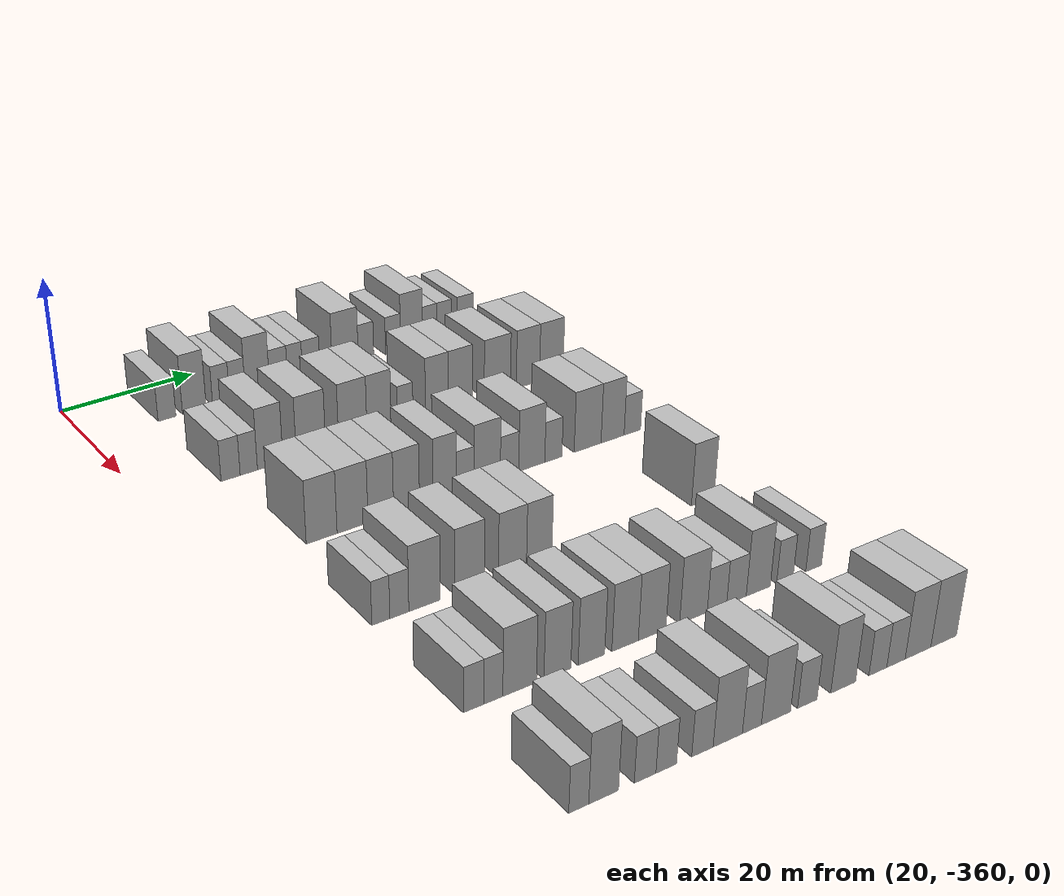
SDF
<sdf version="1.6">
 <world name="default">
  <model name="building_1">
   <static>1</static>
   <pose>25.0000 -348.6627 0 0.000000 0.000000 0.000000</pose>
   <link name="link">
    <pose>0 0 3.00 0 0 0</pose>
    <collision name="collision"><geometry><box><size>10.0000 2.6746 6.0000</size></box></geometry></collision>
    <visual name="visual">
     <cast_shadows>0</cast_shadows>
     <geometry><box><size>10.0000 2.6746 6.0000</size></box></geometry>
     <material>
      <script>
       <uri>model://HANNAS_wall/materials/scripts</uri>
       <uri>model://HANNAS_wall/materials/textures</uri>
       <name>vrc/HANNAS_wall</name>
      </script>
     </material>
    </visual>
   </link>
  </model>
  <model name="building_2">
   <static>1</static>
   <pose>25.0000 -344.5249 0 0.000000 0.000000 0.000000</pose>
   <link name="link">
    <pose>0 0 4.50 0 0 0</pose>
    <collision name="collision"><geometry><box><size>10.0000 3.6009 9.0000</size></box></geometry></collision>
    <visual name="visual">
     <cast_shadows>0</cast_shadows>
     <geometry><box><size>10.0000 3.6009 9.0000</size></box></geometry>
     <material>
      <script>
       <uri>model://HANNAS_wall/materials/scripts</uri>
       <uri>model://HANNAS_wall/materials/textures</uri>
       <name>vrc/HANNAS_wall</name>
      </script>
     </material>
    </visual>
   </link>
  </model>
  <model name="building_3">
   <static>1</static>
   <pose>25.0000 -340.4151 0 0.000000 0.000000 0.000000</pose>
   <link name="link">
    <pose>0 0 3.00 0 0 0</pose>
    <collision name="collision"><geometry><box><size>10.0000 2.6188 6.0000</size></box></geometry></collision>
    <visual name="visual">
     <cast_shadows>0</cast_shadows>
     <geometry><box><size>10.0000 2.6188 6.0000</size></box></geometry>
     <material>
      <script>
       <uri>model://HANNAS_wall/materials/scripts</uri>
       <uri>model://HANNAS_wall/materials/textures</uri>
       <name>vrc/HANNAS_wall</name>
      </script>
     </material>
    </visual>
   </link>
  </model>
  <model name="building_4">
   <static>1</static>
   <pose>25.0000 -337.8743 0 0.000000 0.000000 0.000000</pose>
   <link name="link">
    <pose>0 0 3.00 0 0 0</pose>
    <collision name="collision"><geometry><box><size>10.0000 2.4629 6.0000</size></box></geometry></collision>
    <visual name="visual">
     <cast_shadows>0</cast_shadows>
     <geometry><box><size>10.0000 2.4629 6.0000</size></box></geometry>
     <material>
      <script>
       <uri>model://HANNAS_wall/materials/scripts</uri>
       <uri>model://HANNAS_wall/materials/textures</uri>
       <name>vrc/HANNAS_wall</name>
      </script>
     </material>
    </visual>
   </link>
  </model>
  <model name="building_5">
   <static>1</static>
   <pose>25.0000 -334.7237 0 0.000000 0.000000 0.000000</pose>
   <link name="link">
    <pose>0 0 4.50 0 0 0</pose>
    <collision name="collision"><geometry><box><size>10.0000 3.8383 9.0000</size></box></geometry></collision>
    <visual name="visual">
     <cast_shadows>0</cast_shadows>
     <geometry><box><size>10.0000 3.8383 9.0000</size></box></geometry>
     <material>
      <script>
       <uri>model://HANNAS_wall/materials/scripts</uri>
       <uri>model://HANNAS_wall/materials/textures</uri>
       <name>vrc/HANNAS_wall</name>
      </script>
     </material>
    </visual>
   </link>
  </model>
  <model name="building_6">
   <static>1</static>
   <pose>25.0000 -331.3662 0 0.000000 0.000000 0.000000</pose>
   <link name="link">
    <pose>0 0 3.00 0 0 0</pose>
    <collision name="collision"><geometry><box><size>10.0000 2.8765 6.0000</size></box></geometry></collision>
    <visual name="visual">
     <cast_shadows>0</cast_shadows>
     <geometry><box><size>10.0000 2.8765 6.0000</size></box></geometry>
     <material>
      <script>
       <uri>model://HANNAS_wall/materials/scripts</uri>
       <uri>model://HANNAS_wall/materials/textures</uri>
       <name>vrc/HANNAS_wall</name>
      </script>
     </material>
    </visual>
   </link>
  </model>
  <model name="building_7">
   <static>1</static>
   <pose>25.0000 -328.7133 0 0.000000 0.000000 0.000000</pose>
   <link name="link">
    <pose>0 0 3.00 0 0 0</pose>
    <collision name="collision"><geometry><box><size>10.0000 2.4293 6.0000</size></box></geometry></collision>
    <visual name="visual">
     <cast_shadows>0</cast_shadows>
     <geometry><box><size>10.0000 2.4293 6.0000</size></box></geometry>
     <material>
      <script>
       <uri>model://HANNAS_wall/materials/scripts</uri>
       <uri>model://HANNAS_wall/materials/textures</uri>
       <name>vrc/HANNAS_wall</name>
      </script>
     </material>
    </visual>
   </link>
  </model>
  <model name="building_8">
   <static>1</static>
   <pose>25.0000 -326.0692 0 0.000000 0.000000 0.000000</pose>
   <link name="link">
    <pose>0 0 3.00 0 0 0</pose>
    <collision name="collision"><geometry><box><size>10.0000 2.8588 6.0000</size></box></geometry></collision>
    <visual name="visual">
     <cast_shadows>0</cast_shadows>
     <geometry><box><size>10.0000 2.8588 6.0000</size></box></geometry>
     <material>
      <script>
       <uri>model://HANNAS_wall/materials/scripts</uri>
       <uri>model://HANNAS_wall/materials/textures</uri>
       <name>vrc/HANNAS_wall</name>
      </script>
     </material>
    </visual>
   </link>
  </model>
  <model name="building_9">
   <static>1</static>
   <pose>25.0000 -320.4732 0 0.000000 0.000000 0.000000</pose>
   <link name="link">
    <pose>0 0 4.50 0 0 0</pose>
    <collision name="collision"><geometry><box><size>10.0000 4.3331 9.0000</size></box></geometry></collision>
    <visual name="visual">
     <cast_shadows>0</cast_shadows>
     <geometry><box><size>10.0000 4.3331 9.0000</size></box></geometry>
     <material>
      <script>
       <uri>model://HANNAS_wall/materials/scripts</uri>
       <uri>model://HANNAS_wall/materials/textures</uri>
       <name>vrc/HANNAS_wall</name>
      </script>
     </material>
    </visual>
   </link>
  </model>
  <model name="building_10">
   <static>1</static>
   <pose>25.0000 -317.0004 0 0.000000 0.000000 0.000000</pose>
   <link name="link">
    <pose>0 0 3.00 0 0 0</pose>
    <collision name="collision"><geometry><box><size>10.0000 2.6125 6.0000</size></box></geometry></collision>
    <visual name="visual">
     <cast_shadows>0</cast_shadows>
     <geometry><box><size>10.0000 2.6125 6.0000</size></box></geometry>
     <material>
      <script>
       <uri>model://HANNAS_wall/materials/scripts</uri>
       <uri>model://HANNAS_wall/materials/textures</uri>
       <name>vrc/HANNAS_wall</name>
      </script>
     </material>
    </visual>
   </link>
  </model>
  <model name="building_11">
   <static>1</static>
   <pose>25.0000 -312.4064 0 0.000000 0.000000 0.000000</pose>
   <link name="link">
    <pose>0 0 3.00 0 0 0</pose>
    <collision name="collision"><geometry><box><size>10.0000 2.5755 6.0000</size></box></geometry></collision>
    <visual name="visual">
     <cast_shadows>0</cast_shadows>
     <geometry><box><size>10.0000 2.5755 6.0000</size></box></geometry>
     <material>
      <script>
       <uri>model://HANNAS_wall/materials/scripts</uri>
       <uri>model://HANNAS_wall/materials/textures</uri>
       <name>vrc/HANNAS_wall</name>
      </script>
     </material>
    </visual>
   </link>
  </model>
  <model name="building_12">
   <static>1</static>
   <pose>25.0000 -309.1953 0 0.000000 0.000000 0.000000</pose>
   <link name="link">
    <pose>0 0 4.50 0 0 0</pose>
    <collision name="collision"><geometry><box><size>10.0000 3.8468 9.0000</size></box></geometry></collision>
    <visual name="visual">
     <cast_shadows>0</cast_shadows>
     <geometry><box><size>10.0000 3.8468 9.0000</size></box></geometry>
     <material>
      <script>
       <uri>model://HANNAS_wall/materials/scripts</uri>
       <uri>model://HANNAS_wall/materials/textures</uri>
       <name>vrc/HANNAS_wall</name>
      </script>
     </material>
    </visual>
   </link>
  </model>
  <model name="building_13">
   <static>1</static>
   <pose>25.0000 -306.0507 0 0.000000 0.000000 0.000000</pose>
   <link name="link">
    <pose>0 0 3.00 0 0 0</pose>
    <collision name="collision"><geometry><box><size>10.0000 2.4424 6.0000</size></box></geometry></collision>
    <visual name="visual">
     <cast_shadows>0</cast_shadows>
     <geometry><box><size>10.0000 2.4424 6.0000</size></box></geometry>
     <material>
      <script>
       <uri>model://HANNAS_wall/materials/scripts</uri>
       <uri>model://HANNAS_wall/materials/textures</uri>
       <name>vrc/HANNAS_wall</name>
      </script>
     </material>
    </visual>
   </link>
  </model>
  <model name="building_14">
   <static>1</static>
   <pose>25.0000 -303.5327 0 0.000000 0.000000 0.000000</pose>
   <link name="link">
    <pose>0 0 3.00 0 0 0</pose>
    <collision name="collision"><geometry><box><size>10.0000 2.5937 6.0000</size></box></geometry></collision>
    <visual name="visual">
     <cast_shadows>0</cast_shadows>
     <geometry><box><size>10.0000 2.5937 6.0000</size></box></geometry>
     <material>
      <script>
       <uri>model://HANNAS_wall/materials/scripts</uri>
       <uri>model://HANNAS_wall/materials/textures</uri>
       <name>vrc/HANNAS_wall</name>
      </script>
     </material>
    </visual>
   </link>
  </model>
  <model name="building_15">
   <static>1</static>
   <pose>25.0000 -299.7746 0 0.000000 0.000000 0.000000</pose>
   <link name="link">
    <pose>0 0 3.00 0 0 0</pose>
    <collision name="collision"><geometry><box><size>10.0000 2.9224 6.0000</size></box></geometry></collision>
    <visual name="visual">
     <cast_shadows>0</cast_shadows>
     <geometry><box><size>10.0000 2.9224 6.0000</size></box></geometry>
     <material>
      <script>
       <uri>model://HANNAS_wall/materials/scripts</uri>
       <uri>model://HANNAS_wall/materials/textures</uri>
       <name>vrc/HANNAS_wall</name>
      </script>
     </material>
    </visual>
   </link>
  </model>
  <model name="building_182">
   <static>1</static>
   <pose>44.0000 -348.6168 0 0.000000 0.000000 0.000000</pose>
   <link name="link">
    <pose>0 0 3.00 0 0 0</pose>
    <collision name="collision"><geometry><box><size>10.0000 2.7663 6.0000</size></box></geometry></collision>
    <visual name="visual">
     <cast_shadows>0</cast_shadows>
     <geometry><box><size>10.0000 2.7663 6.0000</size></box></geometry>
     <material>
      <script>
       <uri>model://HANNAS_wall/materials/scripts</uri>
       <uri>model://HANNAS_wall/materials/textures</uri>
       <name>vrc/HANNAS_wall</name>
      </script>
     </material>
    </visual>
   </link>
  </model>
  <model name="building_183">
   <static>1</static>
   <pose>44.0000 -345.9728 0 0.000000 0.000000 0.000000</pose>
   <link name="link">
    <pose>0 0 3.00 0 0 0</pose>
    <collision name="collision"><geometry><box><size>10.0000 2.5217 6.0000</size></box></geometry></collision>
    <visual name="visual">
     <cast_shadows>0</cast_shadows>
     <geometry><box><size>10.0000 2.5217 6.0000</size></box></geometry>
     <material>
      <script>
       <uri>model://HANNAS_wall/materials/scripts</uri>
       <uri>model://HANNAS_wall/materials/textures</uri>
       <name>vrc/HANNAS_wall</name>
      </script>
     </material>
    </visual>
   </link>
  </model>
  <model name="building_184">
   <static>1</static>
   <pose>44.0000 -342.8248 0 0.000000 0.000000 0.000000</pose>
   <link name="link">
    <pose>0 0 4.50 0 0 0</pose>
    <collision name="collision"><geometry><box><size>10.0000 3.7743 9.0000</size></box></geometry></collision>
    <visual name="visual">
     <cast_shadows>0</cast_shadows>
     <geometry><box><size>10.0000 3.7743 9.0000</size></box></geometry>
     <material>
      <script>
       <uri>model://HANNAS_wall/materials/scripts</uri>
       <uri>model://HANNAS_wall/materials/textures</uri>
       <name>vrc/HANNAS_wall</name>
      </script>
     </material>
    </visual>
   </link>
  </model>
  <model name="building_185">
   <static>1</static>
   <pose>44.0000 -336.7189 0 0.000000 0.000000 0.000000</pose>
   <link name="link">
    <pose>0 0 4.50 0 0 0</pose>
    <collision name="collision"><geometry><box><size>10.0000 4.4376 9.0000</size></box></geometry></collision>
    <visual name="visual">
     <cast_shadows>0</cast_shadows>
     <geometry><box><size>10.0000 4.4376 9.0000</size></box></geometry>
     <material>
      <script>
       <uri>model://HANNAS_wall/materials/scripts</uri>
       <uri>model://HANNAS_wall/materials/textures</uri>
       <name>vrc/HANNAS_wall</name>
      </script>
     </material>
    </visual>
   </link>
  </model>
  <model name="building_186">
   <static>1</static>
   <pose>44.0000 -330.3016 0 0.000000 0.000000 0.000000</pose>
   <link name="link">
    <pose>0 0 4.50 0 0 0</pose>
    <collision name="collision"><geometry><box><size>10.0000 4.3970 9.0000</size></box></geometry></collision>
    <visual name="visual">
     <cast_shadows>0</cast_shadows>
     <geometry><box><size>10.0000 4.3970 9.0000</size></box></geometry>
     <material>
      <script>
       <uri>model://HANNAS_wall/materials/scripts</uri>
       <uri>model://HANNAS_wall/materials/textures</uri>
       <name>vrc/HANNAS_wall</name>
      </script>
     </material>
    </visual>
   </link>
  </model>
  <model name="building_187">
   <static>1</static>
   <pose>44.0000 -326.1953 0 0.000000 0.000000 0.000000</pose>
   <link name="link">
    <pose>0 0 4.50 0 0 0</pose>
    <collision name="collision"><geometry><box><size>10.0000 3.8155 9.0000</size></box></geometry></collision>
    <visual name="visual">
     <cast_shadows>0</cast_shadows>
     <geometry><box><size>10.0000 3.8155 9.0000</size></box></geometry>
     <material>
      <script>
       <uri>model://HANNAS_wall/materials/scripts</uri>
       <uri>model://HANNAS_wall/materials/textures</uri>
       <name>vrc/HANNAS_wall</name>
      </script>
     </material>
    </visual>
   </link>
  </model>
  <model name="building_188">
   <static>1</static>
   <pose>44.0000 -322.0393 0 0.000000 0.000000 0.000000</pose>
   <link name="link">
    <pose>0 0 3.00 0 0 0</pose>
    <collision name="collision"><geometry><box><size>10.0000 2.4966 6.0000</size></box></geometry></collision>
    <visual name="visual">
     <cast_shadows>0</cast_shadows>
     <geometry><box><size>10.0000 2.4966 6.0000</size></box></geometry>
     <material>
      <script>
       <uri>model://HANNAS_wall/materials/scripts</uri>
       <uri>model://HANNAS_wall/materials/textures</uri>
       <name>vrc/HANNAS_wall</name>
      </script>
     </material>
    </visual>
   </link>
  </model>
  <model name="building_189">
   <static>1</static>
   <pose>44.0000 -316.9140 0 0.000000 0.000000 0.000000</pose>
   <link name="link">
    <pose>0 0 4.50 0 0 0</pose>
    <collision name="collision"><geometry><box><size>10.0000 3.7540 9.0000</size></box></geometry></collision>
    <visual name="visual">
     <cast_shadows>0</cast_shadows>
     <geometry><box><size>10.0000 3.7540 9.0000</size></box></geometry>
     <material>
      <script>
       <uri>model://HANNAS_wall/materials/scripts</uri>
       <uri>model://HANNAS_wall/materials/textures</uri>
       <name>vrc/HANNAS_wall</name>
      </script>
     </material>
    </visual>
   </link>
  </model>
  <model name="building_190">
   <static>1</static>
   <pose>44.0000 -313.0675 0 0.000000 0.000000 0.000000</pose>
   <link name="link">
    <pose>0 0 4.50 0 0 0</pose>
    <collision name="collision"><geometry><box><size>10.0000 3.9390 9.0000</size></box></geometry></collision>
    <visual name="visual">
     <cast_shadows>0</cast_shadows>
     <geometry><box><size>10.0000 3.9390 9.0000</size></box></geometry>
     <material>
      <script>
       <uri>model://HANNAS_wall/materials/scripts</uri>
       <uri>model://HANNAS_wall/materials/textures</uri>
       <name>vrc/HANNAS_wall</name>
      </script>
     </material>
    </visual>
   </link>
  </model>
  <model name="building_191">
   <static>1</static>
   <pose>44.0000 -306.8659 0 0.000000 0.000000 0.000000</pose>
   <link name="link">
    <pose>0 0 4.50 0 0 0</pose>
    <collision name="collision"><geometry><box><size>10.0000 4.4641 9.0000</size></box></geometry></collision>
    <visual name="visual">
     <cast_shadows>0</cast_shadows>
     <geometry><box><size>10.0000 4.4641 9.0000</size></box></geometry>
     <material>
      <script>
       <uri>model://HANNAS_wall/materials/scripts</uri>
       <uri>model://HANNAS_wall/materials/textures</uri>
       <name>vrc/HANNAS_wall</name>
      </script>
     </material>
    </visual>
   </link>
  </model>
  <model name="building_192">
   <static>1</static>
   <pose>44.0000 -301.6291 0 0.000000 0.000000 0.000000</pose>
   <link name="link">
    <pose>0 0 4.50 0 0 0</pose>
    <collision name="collision"><geometry><box><size>10.0000 4.0096 9.0000</size></box></geometry></collision>
    <visual name="visual">
     <cast_shadows>0</cast_shadows>
     <geometry><box><size>10.0000 4.0096 9.0000</size></box></geometry>
     <material>
      <script>
       <uri>model://HANNAS_wall/materials/scripts</uri>
       <uri>model://HANNAS_wall/materials/textures</uri>
       <name>vrc/HANNAS_wall</name>
      </script>
     </material>
    </visual>
   </link>
  </model>
  <model name="building_193">
   <static>1</static>
   <pose>44.0000 -297.5588 0 0.000000 0.000000 0.000000</pose>
   <link name="link">
    <pose>0 0 4.50 0 0 0</pose>
    <collision name="collision"><geometry><box><size>10.0000 4.1310 9.0000</size></box></geometry></collision>
    <visual name="visual">
     <cast_shadows>0</cast_shadows>
     <geometry><box><size>10.0000 4.1310 9.0000</size></box></geometry>
     <material>
      <script>
       <uri>model://HANNAS_wall/materials/scripts</uri>
       <uri>model://HANNAS_wall/materials/textures</uri>
       <name>vrc/HANNAS_wall</name>
      </script>
     </material>
    </visual>
   </link>
  </model>
  <model name="building_352">
   <static>1</static>
   <pose>63.0000 -345.8275 0 0.000000 0.000000 0.000000</pose>
   <link name="link">
    <pose>0 0 4.50 0 0 0</pose>
    <collision name="collision"><geometry><box><size>10.0000 4.3451 9.0000</size></box></geometry></collision>
    <visual name="visual">
     <cast_shadows>0</cast_shadows>
     <geometry><box><size>10.0000 4.3451 9.0000</size></box></geometry>
     <material>
      <script>
       <uri>model://HANNAS_wall/materials/scripts</uri>
       <uri>model://HANNAS_wall/materials/textures</uri>
       <name>vrc/HANNAS_wall</name>
      </script>
     </material>
    </visual>
   </link>
  </model>
  <model name="building_353">
   <static>1</static>
   <pose>63.0000 -341.4387 0 0.000000 0.000000 0.000000</pose>
   <link name="link">
    <pose>0 0 4.50 0 0 0</pose>
    <collision name="collision"><geometry><box><size>10.0000 4.4324 9.0000</size></box></geometry></collision>
    <visual name="visual">
     <cast_shadows>0</cast_shadows>
     <geometry><box><size>10.0000 4.4324 9.0000</size></box></geometry>
     <material>
      <script>
       <uri>model://HANNAS_wall/materials/scripts</uri>
       <uri>model://HANNAS_wall/materials/textures</uri>
       <name>vrc/HANNAS_wall</name>
      </script>
     </material>
    </visual>
   </link>
  </model>
  <model name="building_354">
   <static>1</static>
   <pose>63.0000 -337.3573 0 0.000000 0.000000 0.000000</pose>
   <link name="link">
    <pose>0 0 4.50 0 0 0</pose>
    <collision name="collision"><geometry><box><size>10.0000 3.7304 9.0000</size></box></geometry></collision>
    <visual name="visual">
     <cast_shadows>0</cast_shadows>
     <geometry><box><size>10.0000 3.7304 9.0000</size></box></geometry>
     <material>
      <script>
       <uri>model://HANNAS_wall/materials/scripts</uri>
       <uri>model://HANNAS_wall/materials/textures</uri>
       <name>vrc/HANNAS_wall</name>
      </script>
     </material>
    </visual>
   </link>
  </model>
  <model name="building_355">
   <static>1</static>
   <pose>63.0000 -333.5800 0 0.000000 0.000000 0.000000</pose>
   <link name="link">
    <pose>0 0 4.50 0 0 0</pose>
    <collision name="collision"><geometry><box><size>10.0000 3.8242 9.0000</size></box></geometry></collision>
    <visual name="visual">
     <cast_shadows>0</cast_shadows>
     <geometry><box><size>10.0000 3.8242 9.0000</size></box></geometry>
     <material>
      <script>
       <uri>model://HANNAS_wall/materials/scripts</uri>
       <uri>model://HANNAS_wall/materials/textures</uri>
       <name>vrc/HANNAS_wall</name>
      </script>
     </material>
    </visual>
   </link>
  </model>
  <model name="building_356">
   <static>1</static>
   <pose>63.0000 -327.8674 0 0.000000 0.000000 0.000000</pose>
   <link name="link">
    <pose>0 0 4.50 0 0 0</pose>
    <collision name="collision"><geometry><box><size>10.0000 3.6010 9.0000</size></box></geometry></collision>
    <visual name="visual">
     <cast_shadows>0</cast_shadows>
     <geometry><box><size>10.0000 3.6010 9.0000</size></box></geometry>
     <material>
      <script>
       <uri>model://HANNAS_wall/materials/scripts</uri>
       <uri>model://HANNAS_wall/materials/textures</uri>
       <name>vrc/HANNAS_wall</name>
      </script>
     </material>
    </visual>
   </link>
  </model>
  <model name="building_357">
   <static>1</static>
   <pose>63.0000 -324.7570 0 0.000000 0.000000 0.000000</pose>
   <link name="link">
    <pose>0 0 3.00 0 0 0</pose>
    <collision name="collision"><geometry><box><size>10.0000 2.6199 6.0000</size></box></geometry></collision>
    <visual name="visual">
     <cast_shadows>0</cast_shadows>
     <geometry><box><size>10.0000 2.6199 6.0000</size></box></geometry>
     <material>
      <script>
       <uri>model://HANNAS_wall/materials/scripts</uri>
       <uri>model://HANNAS_wall/materials/textures</uri>
       <name>vrc/HANNAS_wall</name>
      </script>
     </material>
    </visual>
   </link>
  </model>
  <model name="building_358">
   <static>1</static>
   <pose>63.0000 -321.3838 0 0.000000 0.000000 0.000000</pose>
   <link name="link">
    <pose>0 0 4.50 0 0 0</pose>
    <collision name="collision"><geometry><box><size>10.0000 4.1264 9.0000</size></box></geometry></collision>
    <visual name="visual">
     <cast_shadows>0</cast_shadows>
     <geometry><box><size>10.0000 4.1264 9.0000</size></box></geometry>
     <material>
      <script>
       <uri>model://HANNAS_wall/materials/scripts</uri>
       <uri>model://HANNAS_wall/materials/textures</uri>
       <name>vrc/HANNAS_wall</name>
      </script>
     </material>
    </visual>
   </link>
  </model>
  <model name="building_359">
   <static>1</static>
   <pose>63.0000 -317.8697 0 0.000000 0.000000 0.000000</pose>
   <link name="link">
    <pose>0 0 3.00 0 0 0</pose>
    <collision name="collision"><geometry><box><size>10.0000 2.9019 6.0000</size></box></geometry></collision>
    <visual name="visual">
     <cast_shadows>0</cast_shadows>
     <geometry><box><size>10.0000 2.9019 6.0000</size></box></geometry>
     <material>
      <script>
       <uri>model://HANNAS_wall/materials/scripts</uri>
       <uri>model://HANNAS_wall/materials/textures</uri>
       <name>vrc/HANNAS_wall</name>
      </script>
     </material>
    </visual>
   </link>
  </model>
  <model name="building_360">
   <static>1</static>
   <pose>63.0000 -314.3323 0 0.000000 0.000000 0.000000</pose>
   <link name="link">
    <pose>0 0 4.50 0 0 0</pose>
    <collision name="collision"><geometry><box><size>10.0000 4.1727 9.0000</size></box></geometry></collision>
    <visual name="visual">
     <cast_shadows>0</cast_shadows>
     <geometry><box><size>10.0000 4.1727 9.0000</size></box></geometry>
     <material>
      <script>
       <uri>model://HANNAS_wall/materials/scripts</uri>
       <uri>model://HANNAS_wall/materials/textures</uri>
       <name>vrc/HANNAS_wall</name>
      </script>
     </material>
    </visual>
   </link>
  </model>
  <model name="building_361">
   <static>1</static>
   <pose>63.0000 -310.8542 0 0.000000 0.000000 0.000000</pose>
   <link name="link">
    <pose>0 0 3.00 0 0 0</pose>
    <collision name="collision"><geometry><box><size>10.0000 2.7835 6.0000</size></box></geometry></collision>
    <visual name="visual">
     <cast_shadows>0</cast_shadows>
     <geometry><box><size>10.0000 2.7835 6.0000</size></box></geometry>
     <material>
      <script>
       <uri>model://HANNAS_wall/materials/scripts</uri>
       <uri>model://HANNAS_wall/materials/textures</uri>
       <name>vrc/HANNAS_wall</name>
      </script>
     </material>
    </visual>
   </link>
  </model>
  <model name="building_362">
   <static>1</static>
   <pose>63.0000 -305.2349 0 0.000000 0.000000 0.000000</pose>
   <link name="link">
    <pose>0 0 4.50 0 0 0</pose>
    <collision name="collision"><geometry><box><size>10.0000 4.4552 9.0000</size></box></geometry></collision>
    <visual name="visual">
     <cast_shadows>0</cast_shadows>
     <geometry><box><size>10.0000 4.4552 9.0000</size></box></geometry>
     <material>
      <script>
       <uri>model://HANNAS_wall/materials/scripts</uri>
       <uri>model://HANNAS_wall/materials/textures</uri>
       <name>vrc/HANNAS_wall</name>
      </script>
     </material>
    </visual>
   </link>
  </model>
  <model name="building_363">
   <static>1</static>
   <pose>63.0000 -301.0618 0 0.000000 0.000000 0.000000</pose>
   <link name="link">
    <pose>0 0 4.50 0 0 0</pose>
    <collision name="collision"><geometry><box><size>10.0000 3.8910 9.0000</size></box></geometry></collision>
    <visual name="visual">
     <cast_shadows>0</cast_shadows>
     <geometry><box><size>10.0000 3.8910 9.0000</size></box></geometry>
     <material>
      <script>
       <uri>model://HANNAS_wall/materials/scripts</uri>
       <uri>model://HANNAS_wall/materials/textures</uri>
       <name>vrc/HANNAS_wall</name>
      </script>
     </material>
    </visual>
   </link>
  </model>
  <model name="building_364">
   <static>1</static>
   <pose>63.0000 -297.7125 0 0.000000 0.000000 0.000000</pose>
   <link name="link">
    <pose>0 0 3.00 0 0 0</pose>
    <collision name="collision"><geometry><box><size>10.0000 2.8076 6.0000</size></box></geometry></collision>
    <visual name="visual">
     <cast_shadows>0</cast_shadows>
     <geometry><box><size>10.0000 2.8076 6.0000</size></box></geometry>
     <material>
      <script>
       <uri>model://HANNAS_wall/materials/scripts</uri>
       <uri>model://HANNAS_wall/materials/textures</uri>
       <name>vrc/HANNAS_wall</name>
      </script>
     </material>
    </visual>
   </link>
  </model>
  <model name="building_521">
   <static>1</static>
   <pose>82.0000 -348.7983 0 0.000000 0.000000 0.000000</pose>
   <link name="link">
    <pose>0 0 3.00 0 0 0</pose>
    <collision name="collision"><geometry><box><size>10.0000 2.4034 6.0000</size></box></geometry></collision>
    <visual name="visual">
     <cast_shadows>0</cast_shadows>
     <geometry><box><size>10.0000 2.4034 6.0000</size></box></geometry>
     <material>
      <script>
       <uri>model://HANNAS_wall/materials/scripts</uri>
       <uri>model://HANNAS_wall/materials/textures</uri>
       <name>vrc/HANNAS_wall</name>
      </script>
     </material>
    </visual>
   </link>
  </model>
  <model name="building_522">
   <static>1</static>
   <pose>82.0000 -346.3188 0 0.000000 0.000000 0.000000</pose>
   <link name="link">
    <pose>0 0 3.00 0 0 0</pose>
    <collision name="collision"><geometry><box><size>10.0000 2.5556 6.0000</size></box></geometry></collision>
    <visual name="visual">
     <cast_shadows>0</cast_shadows>
     <geometry><box><size>10.0000 2.5556 6.0000</size></box></geometry>
     <material>
      <script>
       <uri>model://HANNAS_wall/materials/scripts</uri>
       <uri>model://HANNAS_wall/materials/textures</uri>
       <name>vrc/HANNAS_wall</name>
      </script>
     </material>
    </visual>
   </link>
  </model>
  <model name="building_523">
   <static>1</static>
   <pose>82.0000 -342.8935 0 0.000000 0.000000 0.000000</pose>
   <link name="link">
    <pose>0 0 4.50 0 0 0</pose>
    <collision name="collision"><geometry><box><size>10.0000 4.2949 9.0000</size></box></geometry></collision>
    <visual name="visual">
     <cast_shadows>0</cast_shadows>
     <geometry><box><size>10.0000 4.2949 9.0000</size></box></geometry>
     <material>
      <script>
       <uri>model://HANNAS_wall/materials/scripts</uri>
       <uri>model://HANNAS_wall/materials/textures</uri>
       <name>vrc/HANNAS_wall</name>
      </script>
     </material>
    </visual>
   </link>
  </model>
  <model name="building_524">
   <static>1</static>
   <pose>82.0000 -336.6485 0 0.000000 0.000000 0.000000</pose>
   <link name="link">
    <pose>0 0 4.50 0 0 0</pose>
    <collision name="collision"><geometry><box><size>10.0000 4.1951 9.0000</size></box></geometry></collision>
    <visual name="visual">
     <cast_shadows>0</cast_shadows>
     <geometry><box><size>10.0000 4.1951 9.0000</size></box></geometry>
     <material>
      <script>
       <uri>model://HANNAS_wall/materials/scripts</uri>
       <uri>model://HANNAS_wall/materials/textures</uri>
       <name>vrc/HANNAS_wall</name>
      </script>
     </material>
    </visual>
   </link>
  </model>
  <model name="building_525">
   <static>1</static>
   <pose>82.0000 -330.5241 0 0.000000 0.000000 0.000000</pose>
   <link name="link">
    <pose>0 0 4.50 0 0 0</pose>
    <collision name="collision"><geometry><box><size>10.0000 4.0538 9.0000</size></box></geometry></collision>
    <visual name="visual">
     <cast_shadows>0</cast_shadows>
     <geometry><box><size>10.0000 4.0538 9.0000</size></box></geometry>
     <material>
      <script>
       <uri>model://HANNAS_wall/materials/scripts</uri>
       <uri>model://HANNAS_wall/materials/textures</uri>
       <name>vrc/HANNAS_wall</name>
      </script>
     </material>
    </visual>
   </link>
  </model>
  <model name="building_526">
   <static>1</static>
   <pose>82.0000 -326.6353 0 0.000000 0.000000 0.000000</pose>
   <link name="link">
    <pose>0 0 4.50 0 0 0</pose>
    <collision name="collision"><geometry><box><size>10.0000 3.7237 9.0000</size></box></geometry></collision>
    <visual name="visual">
     <cast_shadows>0</cast_shadows>
     <geometry><box><size>10.0000 3.7237 9.0000</size></box></geometry>
     <material>
      <script>
       <uri>model://HANNAS_wall/materials/scripts</uri>
       <uri>model://HANNAS_wall/materials/textures</uri>
       <name>vrc/HANNAS_wall</name>
      </script>
     </material>
    </visual>
   </link>
  </model>
  <model name="building_527">
   <static>1</static>
   <pose>82.0000 -301.2144 0 0.000000 0.000000 0.000000</pose>
   <link name="link">
    <pose>0 0 4.50 0 0 0</pose>
    <collision name="collision"><geometry><box><size>10.0000 3.7061 9.0000</size></box></geometry></collision>
    <visual name="visual">
     <cast_shadows>0</cast_shadows>
     <geometry><box><size>10.0000 3.7061 9.0000</size></box></geometry>
     <material>
      <script>
       <uri>model://HANNAS_wall/materials/scripts</uri>
       <uri>model://HANNAS_wall/materials/textures</uri>
       <name>vrc/HANNAS_wall</name>
      </script>
     </material>
    </visual>
   </link>
  </model>
  <model name="building_683">
   <static>1</static>
   <pose>101.0000 -348.6821 0 0.000000 0.000000 0.000000</pose>
   <link name="link">
    <pose>0 0 3.00 0 0 0</pose>
    <collision name="collision"><geometry><box><size>10.0000 2.6358 6.0000</size></box></geometry></collision>
    <visual name="visual">
     <cast_shadows>0</cast_shadows>
     <geometry><box><size>10.0000 2.6358 6.0000</size></box></geometry>
     <material>
      <script>
       <uri>model://HANNAS_wall/materials/scripts</uri>
       <uri>model://HANNAS_wall/materials/textures</uri>
       <name>vrc/HANNAS_wall</name>
      </script>
     </material>
    </visual>
   </link>
  </model>
  <model name="building_684">
   <static>1</static>
   <pose>101.0000 -346.1358 0 0.000000 0.000000 0.000000</pose>
   <link name="link">
    <pose>0 0 3.00 0 0 0</pose>
    <collision name="collision"><geometry><box><size>10.0000 2.4567 6.0000</size></box></geometry></collision>
    <visual name="visual">
     <cast_shadows>0</cast_shadows>
     <geometry><box><size>10.0000 2.4567 6.0000</size></box></geometry>
     <material>
      <script>
       <uri>model://HANNAS_wall/materials/scripts</uri>
       <uri>model://HANNAS_wall/materials/textures</uri>
       <name>vrc/HANNAS_wall</name>
      </script>
     </material>
    </visual>
   </link>
  </model>
  <model name="building_685">
   <static>1</static>
   <pose>101.0000 -342.6908 0 0.000000 0.000000 0.000000</pose>
   <link name="link">
    <pose>0 0 4.50 0 0 0</pose>
    <collision name="collision"><geometry><box><size>10.0000 4.4332 9.0000</size></box></geometry></collision>
    <visual name="visual">
     <cast_shadows>0</cast_shadows>
     <geometry><box><size>10.0000 4.4332 9.0000</size></box></geometry>
     <material>
      <script>
       <uri>model://HANNAS_wall/materials/scripts</uri>
       <uri>model://HANNAS_wall/materials/textures</uri>
       <name>vrc/HANNAS_wall</name>
      </script>
     </material>
    </visual>
   </link>
  </model>
  <model name="building_686">
   <static>1</static>
   <pose>101.0000 -337.6554 0 0.000000 0.000000 0.000000</pose>
   <link name="link">
    <pose>0 0 4.50 0 0 0</pose>
    <collision name="collision"><geometry><box><size>10.0000 3.6376 9.0000</size></box></geometry></collision>
    <visual name="visual">
     <cast_shadows>0</cast_shadows>
     <geometry><box><size>10.0000 3.6376 9.0000</size></box></geometry>
     <material>
      <script>
       <uri>model://HANNAS_wall/materials/scripts</uri>
       <uri>model://HANNAS_wall/materials/textures</uri>
       <name>vrc/HANNAS_wall</name>
      </script>
     </material>
    </visual>
   </link>
  </model>
  <model name="building_687">
   <static>1</static>
   <pose>101.0000 -333.0006 0 0.000000 0.000000 0.000000</pose>
   <link name="link">
    <pose>0 0 4.50 0 0 0</pose>
    <collision name="collision"><geometry><box><size>10.0000 3.6720 9.0000</size></box></geometry></collision>
    <visual name="visual">
     <cast_shadows>0</cast_shadows>
     <geometry><box><size>10.0000 3.6720 9.0000</size></box></geometry>
     <material>
      <script>
       <uri>model://HANNAS_wall/materials/scripts</uri>
       <uri>model://HANNAS_wall/materials/textures</uri>
       <name>vrc/HANNAS_wall</name>
      </script>
     </material>
    </visual>
   </link>
  </model>
  <model name="building_688">
   <static>1</static>
   <pose>101.0000 -328.2950 0 0.000000 0.000000 0.000000</pose>
   <link name="link">
    <pose>0 0 4.50 0 0 0</pose>
    <collision name="collision"><geometry><box><size>10.0000 3.7394 9.0000</size></box></geometry></collision>
    <visual name="visual">
     <cast_shadows>0</cast_shadows>
     <geometry><box><size>10.0000 3.7394 9.0000</size></box></geometry>
     <material>
      <script>
       <uri>model://HANNAS_wall/materials/scripts</uri>
       <uri>model://HANNAS_wall/materials/textures</uri>
       <name>vrc/HANNAS_wall</name>
      </script>
     </material>
    </visual>
   </link>
  </model>
  <model name="building_689">
   <static>1</static>
   <pose>101.0000 -324.4394 0 0.000000 0.000000 0.000000</pose>
   <link name="link">
    <pose>0 0 4.50 0 0 0</pose>
    <collision name="collision"><geometry><box><size>10.0000 3.9718 9.0000</size></box></geometry></collision>
    <visual name="visual">
     <cast_shadows>0</cast_shadows>
     <geometry><box><size>10.0000 3.9718 9.0000</size></box></geometry>
     <material>
      <script>
       <uri>model://HANNAS_wall/materials/scripts</uri>
       <uri>model://HANNAS_wall/materials/textures</uri>
       <name>vrc/HANNAS_wall</name>
      </script>
     </material>
    </visual>
   </link>
  </model>
  <model name="building_690">
   <static>1</static>
   <pose>101.0000 -318.4124 0 0.000000 0.000000 0.000000</pose>
   <link name="link">
    <pose>0 0 4.50 0 0 0</pose>
    <collision name="collision"><geometry><box><size>10.0000 4.0822 9.0000</size></box></geometry></collision>
    <visual name="visual">
     <cast_shadows>0</cast_shadows>
     <geometry><box><size>10.0000 4.0822 9.0000</size></box></geometry>
     <material>
      <script>
       <uri>model://HANNAS_wall/materials/scripts</uri>
       <uri>model://HANNAS_wall/materials/textures</uri>
       <name>vrc/HANNAS_wall</name>
      </script>
     </material>
    </visual>
   </link>
  </model>
  <model name="building_691">
   <static>1</static>
   <pose>101.0000 -314.9101 0 0.000000 0.000000 0.000000</pose>
   <link name="link">
    <pose>0 0 3.00 0 0 0</pose>
    <collision name="collision"><geometry><box><size>10.0000 2.9225 6.0000</size></box></geometry></collision>
    <visual name="visual">
     <cast_shadows>0</cast_shadows>
     <geometry><box><size>10.0000 2.9225 6.0000</size></box></geometry>
     <material>
      <script>
       <uri>model://HANNAS_wall/materials/scripts</uri>
       <uri>model://HANNAS_wall/materials/textures</uri>
       <name>vrc/HANNAS_wall</name>
      </script>
     </material>
    </visual>
   </link>
  </model>
  <model name="building_692">
   <static>1</static>
   <pose>101.0000 -311.9602 0 0.000000 0.000000 0.000000</pose>
   <link name="link">
    <pose>0 0 3.00 0 0 0</pose>
    <collision name="collision"><geometry><box><size>10.0000 2.9772 6.0000</size></box></geometry></collision>
    <visual name="visual">
     <cast_shadows>0</cast_shadows>
     <geometry><box><size>10.0000 2.9772 6.0000</size></box></geometry>
     <material>
      <script>
       <uri>model://HANNAS_wall/materials/scripts</uri>
       <uri>model://HANNAS_wall/materials/textures</uri>
       <name>vrc/HANNAS_wall</name>
      </script>
     </material>
    </visual>
   </link>
  </model>
  <model name="building_693">
   <static>1</static>
   <pose>101.0000 -308.6158 0 0.000000 0.000000 0.000000</pose>
   <link name="link">
    <pose>0 0 4.50 0 0 0</pose>
    <collision name="collision"><geometry><box><size>10.0000 3.7117 9.0000</size></box></geometry></collision>
    <visual name="visual">
     <cast_shadows>0</cast_shadows>
     <geometry><box><size>10.0000 3.7117 9.0000</size></box></geometry>
     <material>
      <script>
       <uri>model://HANNAS_wall/materials/scripts</uri>
       <uri>model://HANNAS_wall/materials/textures</uri>
       <name>vrc/HANNAS_wall</name>
      </script>
     </material>
    </visual>
   </link>
  </model>
  <model name="building_694">
   <static>1</static>
   <pose>101.0000 -304.4601 0 0.000000 0.000000 0.000000</pose>
   <link name="link">
    <pose>0 0 3.00 0 0 0</pose>
    <collision name="collision"><geometry><box><size>10.0000 2.5995 6.0000</size></box></geometry></collision>
    <visual name="visual">
     <cast_shadows>0</cast_shadows>
     <geometry><box><size>10.0000 2.5995 6.0000</size></box></geometry>
     <material>
      <script>
       <uri>model://HANNAS_wall/materials/scripts</uri>
       <uri>model://HANNAS_wall/materials/textures</uri>
       <name>vrc/HANNAS_wall</name>
      </script>
     </material>
    </visual>
   </link>
  </model>
  <model name="building_695">
   <static>1</static>
   <pose>101.0000 -299.8944 0 0.000000 0.000000 0.000000</pose>
   <link name="link">
    <pose>0 0 3.00 0 0 0</pose>
    <collision name="collision"><geometry><box><size>10.0000 2.5319 6.0000</size></box></geometry></collision>
    <visual name="visual">
     <cast_shadows>0</cast_shadows>
     <geometry><box><size>10.0000 2.5319 6.0000</size></box></geometry>
     <material>
      <script>
       <uri>model://HANNAS_wall/materials/scripts</uri>
       <uri>model://HANNAS_wall/materials/textures</uri>
       <name>vrc/HANNAS_wall</name>
      </script>
     </material>
    </visual>
   </link>
  </model>
  <model name="building_860">
   <static>1</static>
   <pose>120.0000 -348.7671 0 0.000000 0.000000 0.000000</pose>
   <link name="link">
    <pose>0 0 3.00 0 0 0</pose>
    <collision name="collision"><geometry><box><size>10.0000 2.4658 6.0000</size></box></geometry></collision>
    <visual name="visual">
     <cast_shadows>0</cast_shadows>
     <geometry><box><size>10.0000 2.4658 6.0000</size></box></geometry>
     <material>
      <script>
       <uri>model://HANNAS_wall/materials/scripts</uri>
       <uri>model://HANNAS_wall/materials/textures</uri>
       <name>vrc/HANNAS_wall</name>
      </script>
     </material>
    </visual>
   </link>
  </model>
  <model name="building_861">
   <static>1</static>
   <pose>120.0000 -345.6679 0 0.000000 0.000000 0.000000</pose>
   <link name="link">
    <pose>0 0 4.50 0 0 0</pose>
    <collision name="collision"><geometry><box><size>10.0000 3.7326 9.0000</size></box></geometry></collision>
    <visual name="visual">
     <cast_shadows>0</cast_shadows>
     <geometry><box><size>10.0000 3.7326 9.0000</size></box></geometry>
     <material>
      <script>
       <uri>model://HANNAS_wall/materials/scripts</uri>
       <uri>model://HANNAS_wall/materials/textures</uri>
       <name>vrc/HANNAS_wall</name>
      </script>
     </material>
    </visual>
   </link>
  </model>
  <model name="building_862">
   <static>1</static>
   <pose>120.0000 -340.4087 0 0.000000 0.000000 0.000000</pose>
   <link name="link">
    <pose>0 0 3.00 0 0 0</pose>
    <collision name="collision"><geometry><box><size>10.0000 2.7858 6.0000</size></box></geometry></collision>
    <visual name="visual">
     <cast_shadows>0</cast_shadows>
     <geometry><box><size>10.0000 2.7858 6.0000</size></box></geometry>
     <material>
      <script>
       <uri>model://HANNAS_wall/materials/scripts</uri>
       <uri>model://HANNAS_wall/materials/textures</uri>
       <name>vrc/HANNAS_wall</name>
      </script>
     </material>
    </visual>
   </link>
  </model>
  <model name="building_863">
   <static>1</static>
   <pose>120.0000 -337.6718 0 0.000000 0.000000 0.000000</pose>
   <link name="link">
    <pose>0 0 3.00 0 0 0</pose>
    <collision name="collision"><geometry><box><size>10.0000 2.6881 6.0000</size></box></geometry></collision>
    <visual name="visual">
     <cast_shadows>0</cast_shadows>
     <geometry><box><size>10.0000 2.6881 6.0000</size></box></geometry>
     <material>
      <script>
       <uri>model://HANNAS_wall/materials/scripts</uri>
       <uri>model://HANNAS_wall/materials/textures</uri>
       <name>vrc/HANNAS_wall</name>
      </script>
     </material>
    </visual>
   </link>
  </model>
  <model name="building_864">
   <static>1</static>
   <pose>120.0000 -332.8960 0 0.000000 0.000000 0.000000</pose>
   <link name="link">
    <pose>0 0 3.00 0 0 0</pose>
    <collision name="collision"><geometry><box><size>10.0000 2.8634 6.0000</size></box></geometry></collision>
    <visual name="visual">
     <cast_shadows>0</cast_shadows>
     <geometry><box><size>10.0000 2.8634 6.0000</size></box></geometry>
     <material>
      <script>
       <uri>model://HANNAS_wall/materials/scripts</uri>
       <uri>model://HANNAS_wall/materials/textures</uri>
       <name>vrc/HANNAS_wall</name>
      </script>
     </material>
    </visual>
   </link>
  </model>
  <model name="building_865">
   <static>1</static>
   <pose>120.0000 -329.4727 0 0.000000 0.000000 0.000000</pose>
   <link name="link">
    <pose>0 0 4.50 0 0 0</pose>
    <collision name="collision"><geometry><box><size>10.0000 3.9831 9.0000</size></box></geometry></collision>
    <visual name="visual">
     <cast_shadows>0</cast_shadows>
     <geometry><box><size>10.0000 3.9831 9.0000</size></box></geometry>
     <material>
      <script>
       <uri>model://HANNAS_wall/materials/scripts</uri>
       <uri>model://HANNAS_wall/materials/textures</uri>
       <name>vrc/HANNAS_wall</name>
      </script>
     </material>
    </visual>
   </link>
  </model>
  <model name="building_866">
   <static>1</static>
   <pose>120.0000 -326.1720 0 0.000000 0.000000 0.000000</pose>
   <link name="link">
    <pose>0 0 3.00 0 0 0</pose>
    <collision name="collision"><geometry><box><size>10.0000 2.6185 6.0000</size></box></geometry></collision>
    <visual name="visual">
     <cast_shadows>0</cast_shadows>
     <geometry><box><size>10.0000 2.6185 6.0000</size></box></geometry>
     <material>
      <script>
       <uri>model://HANNAS_wall/materials/scripts</uri>
       <uri>model://HANNAS_wall/materials/textures</uri>
       <name>vrc/HANNAS_wall</name>
      </script>
     </material>
    </visual>
   </link>
  </model>
  <model name="building_867">
   <static>1</static>
   <pose>120.0000 -322.8102 0 0.000000 0.000000 0.000000</pose>
   <link name="link">
    <pose>0 0 4.50 0 0 0</pose>
    <collision name="collision"><geometry><box><size>10.0000 4.1050 9.0000</size></box></geometry></collision>
    <visual name="visual">
     <cast_shadows>0</cast_shadows>
     <geometry><box><size>10.0000 4.1050 9.0000</size></box></geometry>
     <material>
      <script>
       <uri>model://HANNAS_wall/materials/scripts</uri>
       <uri>model://HANNAS_wall/materials/textures</uri>
       <name>vrc/HANNAS_wall</name>
      </script>
     </material>
    </visual>
   </link>
  </model>
  <model name="building_868">
   <static>1</static>
   <pose>120.0000 -318.3593 0 0.000000 0.000000 0.000000</pose>
   <link name="link">
    <pose>0 0 3.00 0 0 0</pose>
    <collision name="collision"><geometry><box><size>10.0000 2.7967 6.0000</size></box></geometry></collision>
    <visual name="visual">
     <cast_shadows>0</cast_shadows>
     <geometry><box><size>10.0000 2.7967 6.0000</size></box></geometry>
     <material>
      <script>
       <uri>model://HANNAS_wall/materials/scripts</uri>
       <uri>model://HANNAS_wall/materials/textures</uri>
       <name>vrc/HANNAS_wall</name>
      </script>
     </material>
    </visual>
   </link>
  </model>
  <model name="building_869">
   <static>1</static>
   <pose>120.0000 -313.1370 0 0.000000 0.000000 0.000000</pose>
   <link name="link">
    <pose>0 0 4.50 0 0 0</pose>
    <collision name="collision"><geometry><box><size>10.0000 3.6480 9.0000</size></box></geometry></collision>
    <visual name="visual">
     <cast_shadows>0</cast_shadows>
     <geometry><box><size>10.0000 3.6480 9.0000</size></box></geometry>
     <material>
      <script>
       <uri>model://HANNAS_wall/materials/scripts</uri>
       <uri>model://HANNAS_wall/materials/textures</uri>
       <name>vrc/HANNAS_wall</name>
      </script>
     </material>
    </visual>
   </link>
  </model>
  <model name="building_870">
   <static>1</static>
   <pose>120.0000 -307.9622 0 0.000000 0.000000 0.000000</pose>
   <link name="link">
    <pose>0 0 3.00 0 0 0</pose>
    <collision name="collision"><geometry><box><size>10.0000 2.7015 6.0000</size></box></geometry></collision>
    <visual name="visual">
     <cast_shadows>0</cast_shadows>
     <geometry><box><size>10.0000 2.7015 6.0000</size></box></geometry>
     <material>
      <script>
       <uri>model://HANNAS_wall/materials/scripts</uri>
       <uri>model://HANNAS_wall/materials/textures</uri>
       <name>vrc/HANNAS_wall</name>
      </script>
     </material>
    </visual>
   </link>
  </model>
  <model name="building_871">
   <static>1</static>
   <pose>120.0000 -305.2057 0 0.000000 0.000000 0.000000</pose>
   <link name="link">
    <pose>0 0 3.00 0 0 0</pose>
    <collision name="collision"><geometry><box><size>10.0000 2.8115 6.0000</size></box></geometry></collision>
    <visual name="visual">
     <cast_shadows>0</cast_shadows>
     <geometry><box><size>10.0000 2.8115 6.0000</size></box></geometry>
     <material>
      <script>
       <uri>model://HANNAS_wall/materials/scripts</uri>
       <uri>model://HANNAS_wall/materials/textures</uri>
       <name>vrc/HANNAS_wall</name>
      </script>
     </material>
    </visual>
   </link>
  </model>
  <model name="building_872">
   <static>1</static>
   <pose>120.0000 -301.8055 0 0.000000 0.000000 0.000000</pose>
   <link name="link">
    <pose>0 0 4.50 0 0 0</pose>
    <collision name="collision"><geometry><box><size>10.0000 3.9888 9.0000</size></box></geometry></collision>
    <visual name="visual">
     <cast_shadows>0</cast_shadows>
     <geometry><box><size>10.0000 3.9888 9.0000</size></box></geometry>
     <material>
      <script>
       <uri>model://HANNAS_wall/materials/scripts</uri>
       <uri>model://HANNAS_wall/materials/textures</uri>
       <name>vrc/HANNAS_wall</name>
      </script>
     </material>
    </visual>
   </link>
  </model>
  <model name="building_873">
   <static>1</static>
   <pose>120.0000 -297.7859 0 0.000000 0.000000 0.000000</pose>
   <link name="link">
    <pose>0 0 4.50 0 0 0</pose>
    <collision name="collision"><geometry><box><size>10.0000 4.0503 9.0000</size></box></geometry></collision>
    <visual name="visual">
     <cast_shadows>0</cast_shadows>
     <geometry><box><size>10.0000 4.0503 9.0000</size></box></geometry>
     <material>
      <script>
       <uri>model://HANNAS_wall/materials/scripts</uri>
       <uri>model://HANNAS_wall/materials/textures</uri>
       <name>vrc/HANNAS_wall</name>
      </script>
     </material>
    </visual>
   </link>
  </model>
 </world>
</sdf>
